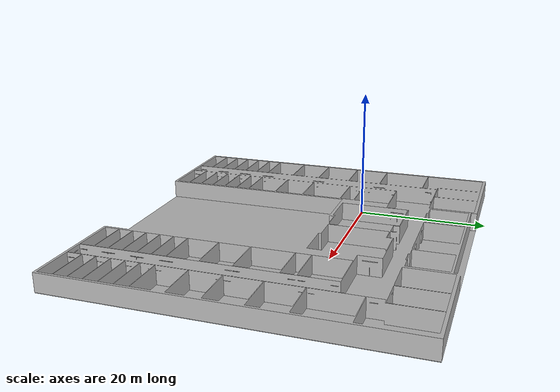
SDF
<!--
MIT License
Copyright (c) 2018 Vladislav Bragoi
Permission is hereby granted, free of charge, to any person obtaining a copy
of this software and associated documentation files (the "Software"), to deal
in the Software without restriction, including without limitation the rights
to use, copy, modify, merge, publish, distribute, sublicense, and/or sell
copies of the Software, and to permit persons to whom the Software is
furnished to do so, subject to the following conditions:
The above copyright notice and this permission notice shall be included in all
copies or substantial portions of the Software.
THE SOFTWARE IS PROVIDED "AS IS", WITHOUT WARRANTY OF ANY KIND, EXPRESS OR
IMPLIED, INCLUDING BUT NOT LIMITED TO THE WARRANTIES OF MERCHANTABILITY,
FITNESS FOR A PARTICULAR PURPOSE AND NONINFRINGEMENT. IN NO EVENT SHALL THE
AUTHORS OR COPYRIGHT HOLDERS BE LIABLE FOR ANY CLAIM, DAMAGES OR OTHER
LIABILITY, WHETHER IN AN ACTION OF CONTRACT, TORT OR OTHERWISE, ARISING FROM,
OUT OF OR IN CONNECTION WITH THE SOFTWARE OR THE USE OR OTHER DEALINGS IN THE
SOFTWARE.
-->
<?xml version="1.0" ?>
<sdf version="1.5">
  <model name="cv2">
    <static>true</static>
    <link name="cv2">
      <visual name="ca_vignal_2">
        <geometry>
            <mesh>
              <uri>model://ca_vignal_2/meshes/plan.dae</uri>
              <scale>1 1 1</scale>
            </mesh>
          </geometry>
      </visual>
    </link>
  </model>
</sdf>
